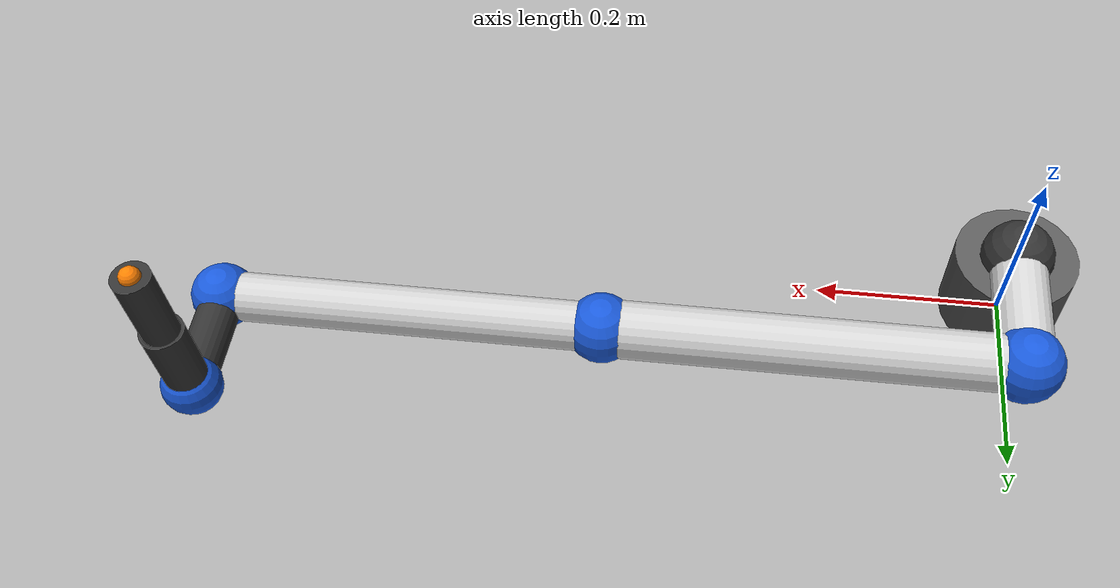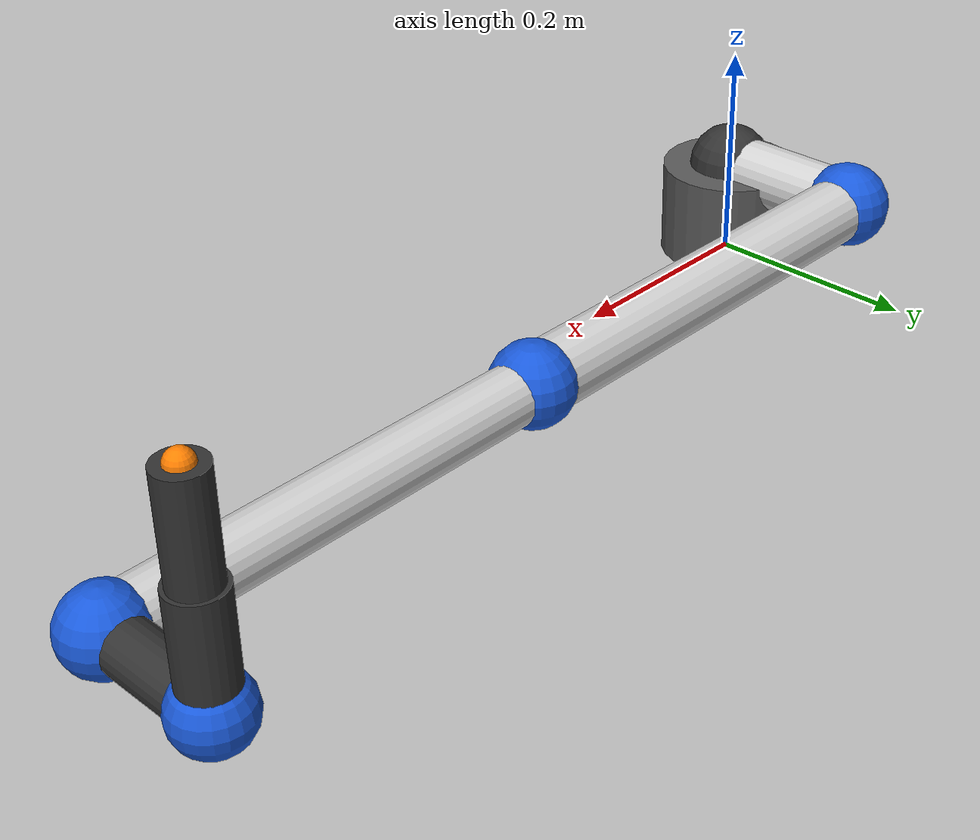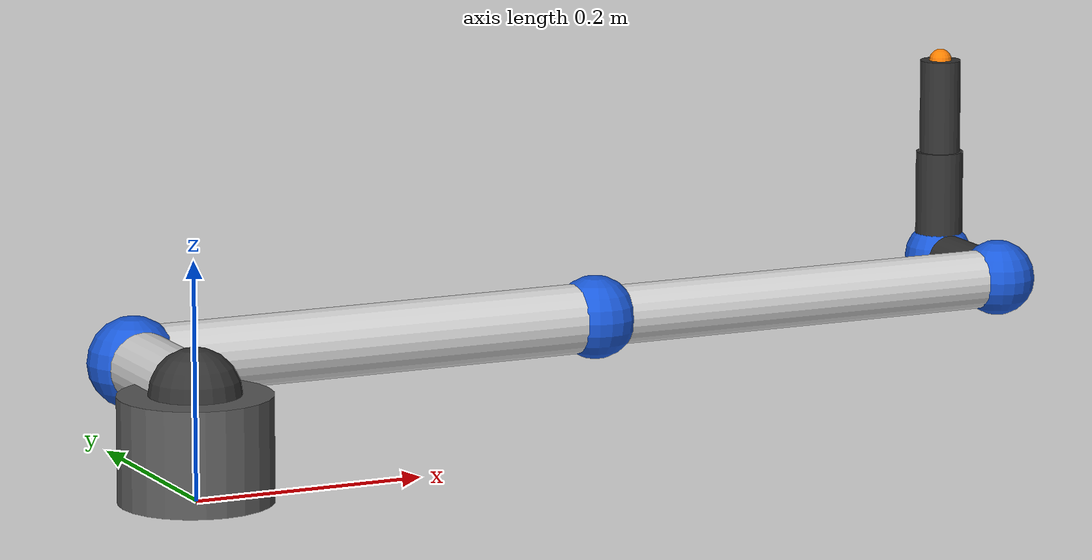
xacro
<?xml version="1.0" ?>
<robot name="poe_ur5_robot" xmlns:xacro="http://ros.org/wiki/xacro">

  <xacro:property name="PI"    value="3.14159265358979"/>
  <xacro:property name="D0"   value="0.0892"/>  <!-- base to J0 height -->
  <xacro:property name="L01Y" value="0.1358"/>  <!-- J0→J1 lateral (Y) -->
  <xacro:property name="L12X" value="0.4250"/>  <!-- J1→J2 upper arm (X) -->
  <xacro:property name="L23X" value="0.3922"/>  <!-- J2→J3 forearm (X) -->
  <xacro:property name="L34Y" value="0.1091"/>  <!-- J3→J4 wrist-1 lateral (Y) -->
  <xacro:property name="L45Z" value="0.0946"/>  <!-- J4→J5 wrist-2 height (Z) -->
  <xacro:property name="TOOL" value="0.0823"/>  <!-- J5→TCP flange (Z) -->
  <xacro:property name="R"    value="0.030"/>   <!-- link tube radius -->
  <xacro:property name="M"    value="1.5"/>     <!-- generic link mass -->

  <link name="world"/>
  <joint name="world_to_base" type="fixed">
    <parent link="world"/>
    <child  link="base_link"/>
    <origin xyz="0 0 0" rpy="0 0 0"/>
  </joint>

  <!-- base -->
  <link name="base_link">
    <inertial>
      <origin xyz="0 0 ${D0/2}" rpy="0 0 0"/>
      <mass value="8.0"/>
      <inertia ixx="0.1" ixy="0" ixz="0" iyy="0.1" iyz="0" izz="0.05"/>
    </inertial>
    <visual>
      <origin xyz="0 0 ${D0/2}" rpy="0 0 0"/>
      <geometry><cylinder radius="0.065" length="${D0}"/></geometry>
      <material name="base_grey"><color rgba="0.35 0.35 0.35 1"/></material>
    </visual>
    <collision>
      <origin xyz="0 0 ${D0/2}" rpy="0 0 0"/>
      <geometry><cylinder radius="0.065" length="${D0}"/></geometry>
    </collision>
  </link>

  <!-- J0: waist — revolute Z, child frame shifts +Y by L01Y to reach shoulder -->
  <joint name="JOINT_0_ACT" type="revolute">
    <parent link="base_link"/>
    <child  link="link_1"/>
    <origin xyz="0 0 ${D0}" rpy="0 0 0"/>
    <axis xyz="0 0 1"/>
    <limit lower="${-2*PI}" upper="${2*PI}" effort="330" velocity="2.09"/>
    <dynamics damping="0.5" friction="0.2"/>
  </joint>

  <!-- link_1: waist→shoulder stub along Y -->
  <link name="link_1">
    <inertial>
      <origin xyz="0 ${L01Y/2} 0" rpy="${PI/2} 0 0"/>
      <mass value="${M}"/>
      <inertia ixx="0.02" ixy="0" ixz="0" iyy="0.02" iyz="0" izz="0.005"/>
    </inertial>
    <visual>
      <origin xyz="0 ${L01Y/2} 0" rpy="${PI/2} 0 0"/>
      <geometry><cylinder radius="${R}" length="${L01Y}"/></geometry>
      <material name="ur_silver"><color rgba="0.82 0.82 0.82 1"/></material>
    </visual>
    <visual>
      <origin xyz="0 0 0" rpy="0 0 0"/>
      <geometry><sphere radius="${R*1.3}"/></geometry>
      <material name="ur_dark"><color rgba="0.2 0.2 0.2 1"/></material>
    </visual>
    <collision>
      <origin xyz="0 ${L01Y/2} 0" rpy="${PI/2} 0 0"/>
      <geometry><cylinder radius="${R}" length="${L01Y}"/></geometry>
    </collision>
  </link>

  <!-- J1: shoulder pitch — revolute Y, moves along +X by L12X -->
  <joint name="JOINT_1_ACT" type="revolute">
    <parent link="link_1"/>
    <child  link="link_2"/>
    <origin xyz="0 ${L01Y} 0" rpy="0 0 0"/>
    <axis xyz="0 1 0"/>
    <limit lower="${-PI}" upper="${PI}" effort="330" velocity="2.09"/>
    <dynamics damping="0.5" friction="0.2"/>
  </joint>

  <!-- link_2: upper arm along X -->
  <link name="link_2">
    <inertial>
      <origin xyz="${L12X/2} 0 0" rpy="0 ${PI/2} 0"/>
      <mass value="${M * 1.2}"/>
      <inertia ixx="0.03" ixy="0" ixz="0" iyy="0.03" iyz="0" izz="0.006"/>
    </inertial>
    <visual>
      <origin xyz="${L12X/2} 0 0" rpy="0 ${PI/2} 0"/>
      <geometry><cylinder radius="${R}" length="${L12X}"/></geometry>
      <material name="ur_silver"><color rgba="0.82 0.82 0.82 1"/></material>
    </visual>
    <visual>
      <origin xyz="0 0 0" rpy="0 0 0"/>
      <geometry><sphere radius="${R*1.3}"/></geometry>
      <material name="ur_blue"><color rgba="0.1 0.35 0.85 1"/></material>
    </visual>
    <collision>
      <origin xyz="${L12X/2} 0 0" rpy="0 ${PI/2} 0"/>
      <geometry><cylinder radius="${R}" length="${L12X}"/></geometry>
    </collision>
  </link>

  <!-- J2: elbow pitch — revolute Y, forearm along +X -->
  <joint name="JOINT_2_ACT" type="revolute">
    <parent link="link_2"/>
    <child  link="link_3"/>
    <origin xyz="${L12X} 0 0" rpy="0 0 0"/>
    <axis xyz="0 1 0"/>
    <limit lower="${-PI}" upper="${PI}" effort="150" velocity="3.14"/>
    <dynamics damping="0.3" friction="0.1"/>
  </joint>

  <!-- link_3: forearm along X -->
  <link name="link_3">
    <inertial>
      <origin xyz="${L23X/2} 0 0" rpy="0 ${PI/2} 0"/>
      <mass value="${M}"/>
      <inertia ixx="0.02" ixy="0" ixz="0" iyy="0.02" iyz="0" izz="0.004"/>
    </inertial>
    <visual>
      <origin xyz="${L23X/2} 0 0" rpy="0 ${PI/2} 0"/>
      <geometry><cylinder radius="${R*0.85}" length="${L23X}"/></geometry>
      <material name="ur_silver"><color rgba="0.82 0.82 0.82 1"/></material>
    </visual>
    <visual>
      <origin xyz="0 0 0" rpy="0 0 0"/>
      <geometry><sphere radius="${R*1.2}"/></geometry>
      <material name="ur_blue"><color rgba="0.1 0.35 0.85 1"/></material>
    </visual>
    <collision>
      <origin xyz="${L23X/2} 0 0" rpy="0 ${PI/2} 0"/>
      <geometry><cylinder radius="${R*0.85}" length="${L23X}"/></geometry>
    </collision>
  </link>

  <!-- J3: wrist-1 pitch — revolute Y, lateral shift +Y -->
  <joint name="JOINT_3_ACT" type="revolute">
    <parent link="link_3"/>
    <child  link="link_4"/>
    <origin xyz="${L23X} 0 0" rpy="0 0 0"/>
    <axis xyz="0 1 0"/>
    <limit lower="${-PI}" upper="${PI}" effort="54" velocity="3.14"/>
    <dynamics damping="0.2" friction="0.1"/>
  </joint>

  <!-- link_4: wrist-1 lateral stub along Y -->
  <link name="link_4">
    <inertial>
      <origin xyz="0 ${L34Y/2} 0" rpy="${PI/2} 0 0"/>
      <mass value="0.5"/>
      <inertia ixx="0.005" ixy="0" ixz="0" iyy="0.005" iyz="0" izz="0.002"/>
    </inertial>
    <visual>
      <origin xyz="0 ${L34Y/2} 0" rpy="${PI/2} 0 0"/>
      <geometry><cylinder radius="${R*0.7}" length="${L34Y}"/></geometry>
      <material name="ur_dark"><color rgba="0.2 0.2 0.2 1"/></material>
    </visual>
    <visual>
      <origin xyz="0 0 0" rpy="0 0 0"/>
      <geometry><sphere radius="${R*1.1}"/></geometry>
      <material name="ur_blue"><color rgba="0.1 0.35 0.85 1"/></material>
    </visual>
    <collision>
      <origin xyz="0 ${L34Y/2} 0" rpy="${PI/2} 0 0"/>
      <geometry><cylinder radius="${R*0.7}" length="${L34Y}"/></geometry>
    </collision>
  </link>

  <!-- J4: wrist-2 roll — axis -Z, lifts along +Z -->
  <joint name="JOINT_4_ACT" type="revolute">
    <parent link="link_4"/>
    <child  link="link_5"/>
    <origin xyz="0 ${L34Y} 0" rpy="0 0 0"/>
    <axis xyz="0 0 -1"/>
    <limit lower="${-PI}" upper="${PI}" effort="54" velocity="3.66"/>
    <dynamics damping="0.1" friction="0.05"/>
  </joint>

  <!-- link_5: wrist-2 height stub along Z -->
  <link name="link_5">
    <inertial>
      <origin xyz="0 0 ${L45Z/2}" rpy="0 0 0"/>
      <mass value="0.4"/>
      <inertia ixx="0.003" ixy="0" ixz="0" iyy="0.003" iyz="0" izz="0.001"/>
    </inertial>
    <visual>
      <origin xyz="0 0 ${L45Z/2}" rpy="0 0 0"/>
      <geometry><cylinder radius="${R*0.7}" length="${L45Z}"/></geometry>
      <material name="ur_dark"><color rgba="0.2 0.2 0.2 1"/></material>
    </visual>
    <visual>
      <origin xyz="0 0 0" rpy="0 0 0"/>
      <geometry><sphere radius="${R}"/></geometry>
      <material name="ur_blue"><color rgba="0.1 0.35 0.85 1"/></material>
    </visual>
    <collision>
      <origin xyz="0 0 ${L45Z/2}" rpy="0 0 0"/>
      <geometry><cylinder radius="${R*0.7}" length="${L45Z}"/></geometry>
    </collision>
  </link>

  <!-- J5: wrist-3 pitch — revolute Y, tool along +Z -->
  <joint name="JOINT_5_ACT" type="revolute">
    <parent link="link_5"/>
    <child  link="link_6"/>
    <origin xyz="0 0 ${L45Z}" rpy="0 0 0"/>
    <axis xyz="0 1 0"/>
    <limit lower="${-PI}" upper="${PI}" effort="54" velocity="3.66"/>
    <dynamics damping="0.05" friction="0.02"/>
  </joint>

  <!-- link_6: tool flange + TCP marker -->
  <link name="link_6">
    <inertial>
      <origin xyz="0 0 ${TOOL/2}" rpy="0 0 0"/>
      <mass value="0.1"/>
      <inertia ixx="0.0005" ixy="0" ixz="0" iyy="0.0005" iyz="0" izz="0.0002"/>
    </inertial>
    <visual>
      <origin xyz="0 0 ${TOOL/2}" rpy="0 0 0"/>
      <geometry><cylinder radius="0.018" length="${TOOL}"/></geometry>
      <material name="ur_dark"><color rgba="0.2 0.2 0.2 1"/></material>
    </visual>
    <visual>
      <origin xyz="0 0 ${TOOL}" rpy="0 0 0"/>
      <geometry><sphere radius="0.010"/></geometry>
      <material name="orange"><color rgba="1.0 0.5 0.0 1"/></material>
    </visual>
    <collision>
      <origin xyz="0 0 ${TOOL/2}" rpy="0 0 0"/>
      <geometry><cylinder radius="0.018" length="${TOOL}"/></geometry>
    </collision>
  </link>

</robot>
